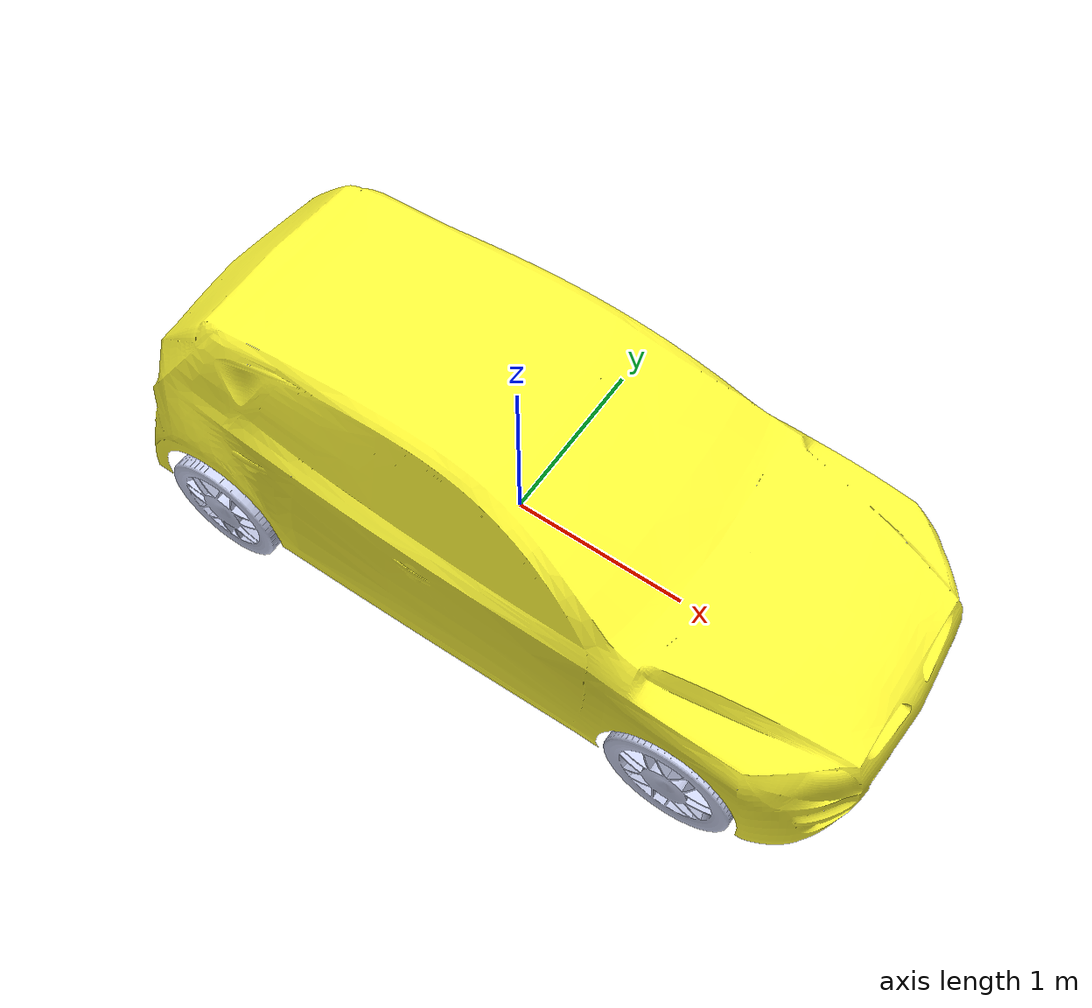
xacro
<?xml version="1.0"?>

<robot xmlns:xacro="http://www.ros.org/wiki/xacro" name="hyundai_kona">

  <link
    name="base_link">
    <inertial>
      <origin
        xyz="0.264699056618069 3.0776511222852E-05 0.16681154112487"
        rpy="0 0 0" />
      <mass
        value="563.052208287187" />
      <inertia
        ixx="58.9011371583765"
        ixy="4.22896719216684E-05"
        ixz="-0.72985717781807"
        iyy="28.8820125943646"
        iyz="0.00817806711271641"
        izz="72.5823509151951" />
    </inertial>
    <visual>
      <origin
        xyz="0 0 0"
        rpy="0 0 0" />
      <geometry>
        <mesh
          filename="package://hyundai_kona/meshes/base_link.STL" />
      </geometry>
      <material
        name="">
        <color
          rgba="1 0.976470588235294 0.219607843137255 1" />
      </material>
    </visual>
    <collision>
      <origin
        xyz="0 0 0"
        rpy="0 0 0" />
      <geometry>
        <mesh
          filename="package://hyundai_kona/meshes/base_link.STL" />
      </geometry>
    </collision>
  </link>
  <link
    name="left_back_wheel">
    <inertial>
      <origin
        xyz="0.0286482971125825 -0.000523532364202328 -0.151563215436339"
        rpy="0 0 0" />
      <mass
        value="86.5546329020324" />
      <inertia
        ixx="3.87817810411085"
        ixy="-0.0014700274376826"
        ixz="-0.389387649232246"
        iyy="3.80492529843167"
        iyz="0.00781108570668996"
        izz="5.87391832935506" />
    </inertial>
    <visual>
      <origin
        xyz="0 0 0"
        rpy="0 0 0" />
      <geometry>
        <mesh
          filename="package://hyundai_kona/meshes/left_back_wheel.STL" />
      </geometry>
      <material
        name="">
        <color
          rgba="0.792156862745098 0.819607843137255 0.933333333333333 1" />
      </material>
    </visual>
    <collision>
      <origin
        xyz="0 0 0"
        rpy="0 0 0" />
      <geometry>
        <mesh
          filename="package://hyundai_kona/meshes/left_back_wheel.STL" />
      </geometry>
    </collision>
  </link>
  <joint
    name="leftbackwheel"
    type="continuous">
    <origin
      xyz="-1.2922 0.91501 -0.023861"
      rpy="-1.566 -0.0063592 -0.18603" />
    <parent
      link="base_link" />
    <child
      link="left_back_wheel" />
    <axis
      xyz="-0.18495 0.0037106 0.98274" />
    <limit
      effort="10"
      velocity="10" />
    <dynamics
      damping="0.1"
      friction="0.1" />
  </joint>
  <link
    name="right_back_wheel">
    <inertial>
      <origin
        xyz="0.0286505967127242 -0.000614652868174304 0.151562438608138"
        rpy="0 0 0" />
      <mass
        value="86.5546329020322" />
      <inertia
        ixx="3.8781781236946"
        ixy="-0.00147041560956481"
        ixz="0.3893876952339"
        iyy="3.80492531216235"
        iyz="-0.00781303951065885"
        izz="5.87391829604057" />
    </inertial>
    <visual>
      <origin
        xyz="0 0 0"
        rpy="0 0 0" />
      <geometry>
        <mesh
          filename="package://hyundai_kona/meshes/right_back_wheel.STL" />
      </geometry>
      <material
        name="">
        <color
          rgba="0.792156862745098 0.819607843137255 0.933333333333333 1" />
      </material>
    </visual>
    <collision>
      <origin
        xyz="0 0 0"
        rpy="0 0 0" />
      <geometry>
        <mesh
          filename="package://hyundai_kona/meshes/right_back_wheel.STL" />
      </geometry>
    </collision>
  </link>
  <joint
    name="rightbackwheel"
    type="continuous">
    <origin
      xyz="-1.2922 -0.91499 -0.023509"
      rpy="-1.576 -0.0062881 0.18602" />
    <parent
      link="base_link" />
    <child
      link="right_back_wheel" />
    <axis
      xyz="-0.18495 0.0037106 -0.98274" />
    <limit
      effort="10"
      velocity="10" />
    <dynamics
      damping="0.1"
      friction="0.1" />
  </joint>
  <link
    name="left_front_wheel">
    <inertial>
      <origin
        xyz="-0.0239800740509795 -0.0127551934920325 -0.151837638201072"
        rpy="0 0 0" />
      <mass
        value="86.5546329020323" />
      <inertia
        ixx="3.85702504826659"
        ixy="0.0278540157916656"
        ixz="0.328914864294296"
        iyy="3.81977893933099"
        iyz="0.175747756204746"
        izz="5.88021774429997" />
    </inertial>
    <visual>
      <origin
        xyz="0 0 0"
        rpy="0 0 0" />
      <geometry>
        <mesh
          filename="package://hyundai_kona/meshes/left_front_wheel.STL" />
      </geometry>
      <material
        name="">
        <color
          rgba="0.792156862745098 0.819607843137255 0.933333333333333 1" />
      </material>
    </visual>
    <collision>
      <origin
        xyz="0 0 0"
        rpy="0 0 0" />
      <geometry>
        <mesh
          filename="package://hyundai_kona/meshes/left_front_wheel.STL" />
      </geometry>
    </collision>
  </link>
  <joint
    name="leftfrontwheel"
    type="continuous">
    <origin
      xyz="1.4524 0.88502 0.08092"
      rpy="-1.5765 -0.51712 0.18054" />
    <parent
      link="base_link" />
    <child
      link="left_front_wheel" />
    <axis
      xyz="-0.15599 -0.083351 -0.98424" />
    <limit
      effort="10"
      velocity="10" />
    <dynamics
      damping="0.1"
      friction="0.1" />
  </joint>
  <link
    name="rigth_front_wheel">
    <inertial>
      <origin
        xyz="-0.0242005509547987 -0.108850938680285 0.106574920919042"
        rpy="0 0 0" />
      <mass
        value="86.5546329020033" />
      <inertia
        ixx="3.85712222694254"
        ixy="0.23616414554103"
        ixz="-0.231052741885735"
        iyy="4.87281308058707"
        iyz="-1.04480381365019"
        izz="4.82708642434705" />
    </inertial>
    <visual>
      <origin
        xyz="0 0 0"
        rpy="0 0 0" />
      <geometry>
        <mesh
          filename="package://hyundai_kona/meshes/rigth_front_wheel.STL" />
      </geometry>
      <material
        name="">
        <color
          rgba="0.792156862745098 0.819607843137255 0.933333333333333 1" />
      </material>
    </visual>
    <collision>
      <origin
        xyz="0 0 0"
        rpy="0 0 0" />
      <geometry>
        <mesh
          filename="package://hyundai_kona/meshes/rigth_front_wheel.STL" />
      </geometry>
    </collision>
  </link>
  <joint
    name="rightfrontwheel"
    type="continuous">
    <origin
      xyz="1.4527 -0.88498 0.080743"
      rpy="-2.3381 -0.18284 -0.15942" />
    <parent
      link="base_link" />
    <child
      link="rigth_front_wheel" />
    <axis
      xyz="-0.15613 -0.70603 0.69075" />
    <limit
      effort="10"
      velocity="10" />
    <dynamics
      damping="0.1"
      friction="0.1" />
  </joint>

<!-- Gazebo Parameters -->
<gazebo reference="base_link">
    <mu1>0.5</mu1>
    <mu2>0.5</mu2>
</gazebo>

<gazebo reference="left_back_wheel">
    <mu1>1.0</mu1>
    <mu2>1.0</mu2>
</gazebo>

<gazebo reference="right_back_wheel">
    <mu1>1.0</mu1>
    <mu2>1.0</mu2>
</gazebo>

<gazebo reference="left_front_wheel">
    <mu1>1.0</mu1>
    <mu2>1.0</mu2>
</gazebo>

<gazebo reference="rigth_front_wheel">
    <mu1>1.0</mu1>
    <mu2>1.0</mu2>
</gazebo>

<!-- Gazebo Plugins -->
<gazebo>
    <plugin filename="gz-sim-diff-drive-system" name="gz::sim::systems::DiffDrive">
        <left_joint>leftbackwheel</left_joint>
        <right_joint>rightbackwheel</right_joint>
        <wheel_separation>1.83</wheel_separation>
        <wheel_radius>0.3175</wheel_radius>
        <max_linear_acceleration>2.0</max_linear_acceleration>
        <max_angular_acceleration>2.0</max_angular_acceleration>
        <max_velocity>20</max_velocity>
        <odom_publish_frequency>50</odom_publish_frequency>
        <topic>cmd_vel</topic>
        <odom_topic>odom</odom_topic>
    </plugin>

    <plugin filename="gz-sim-joint-state-publisher-system" name="gz::sim::systems::JointStatePublisher">
        <topic>joint_states</topic>
        <joint_name>leftbackwheel</joint_name>
        <joint_name>rightbackwheel</joint_name>
        <joint_name>leftfrontwheel</joint_name>
        <joint_name>rightfrontwheel</joint_name>
    </plugin>
</gazebo>

</robot>
